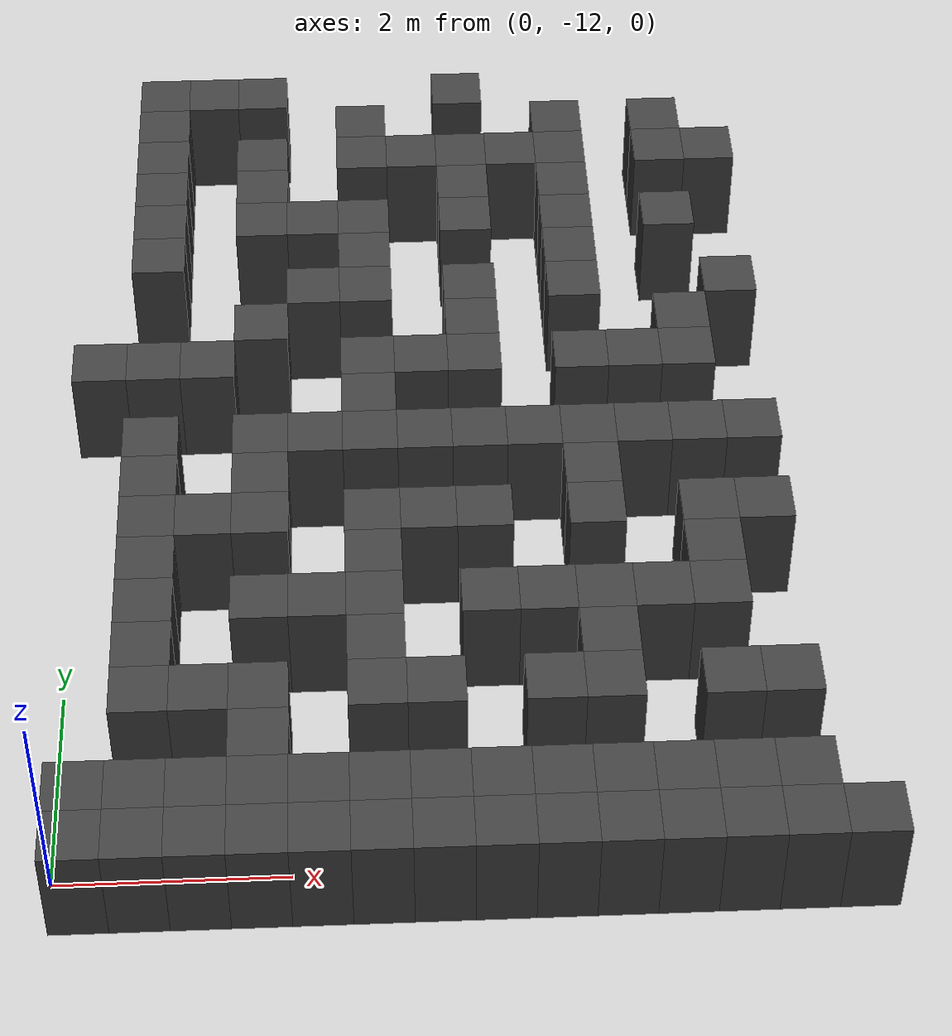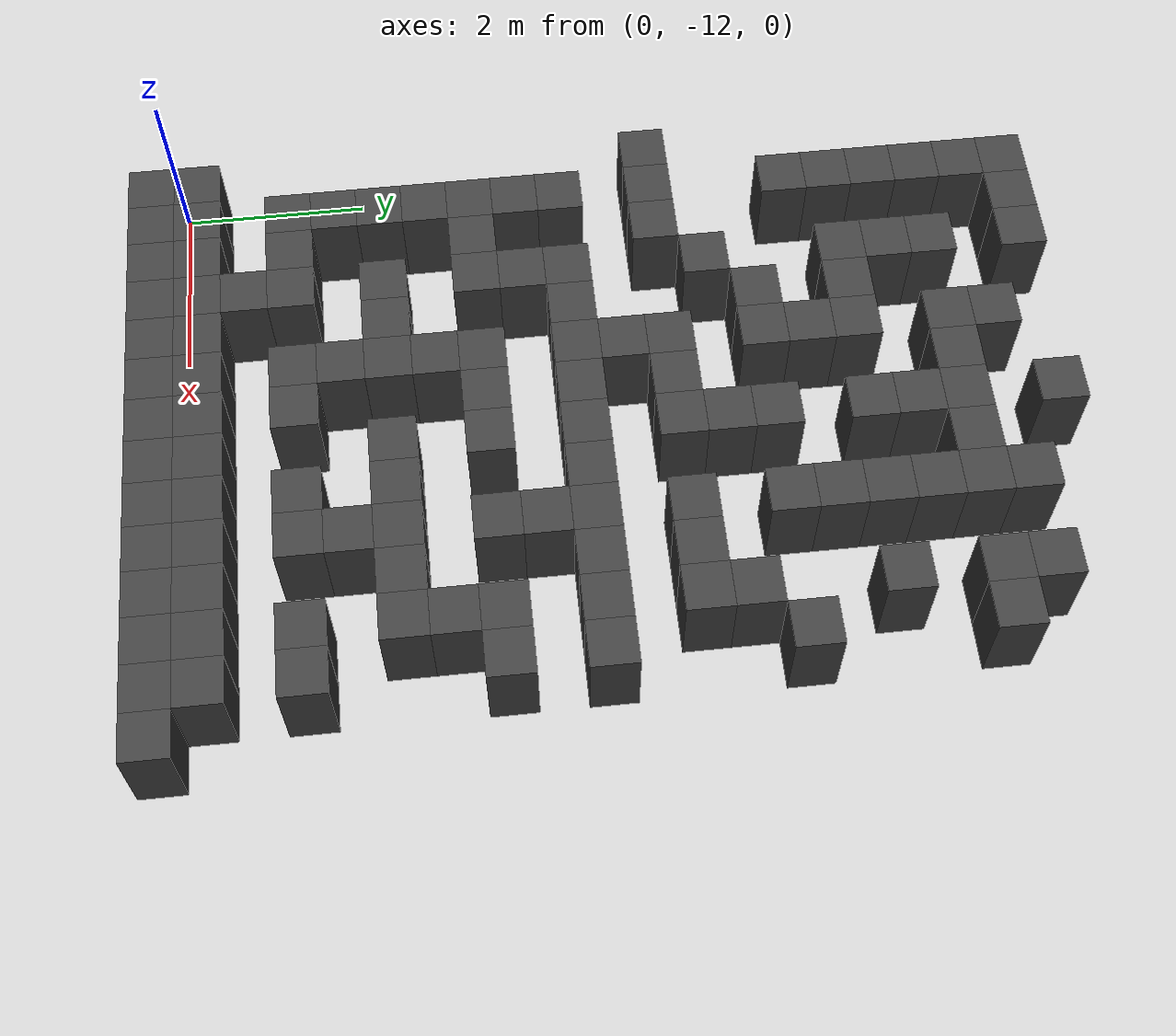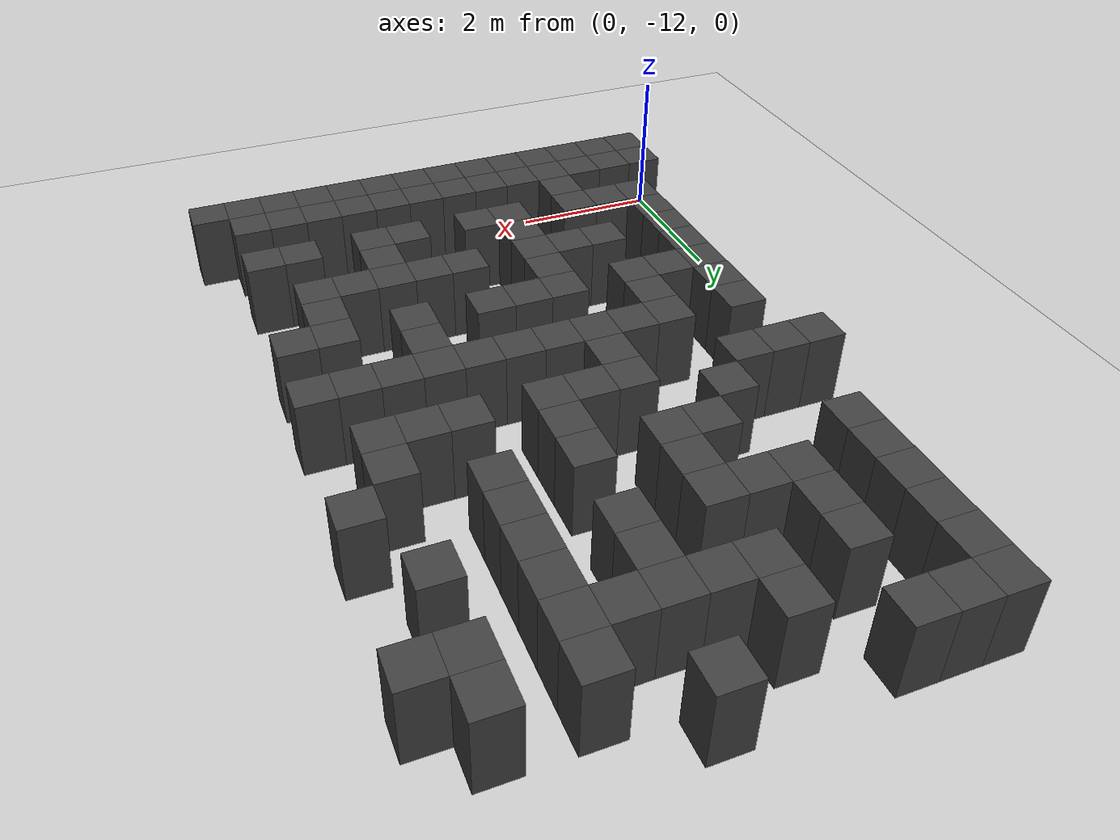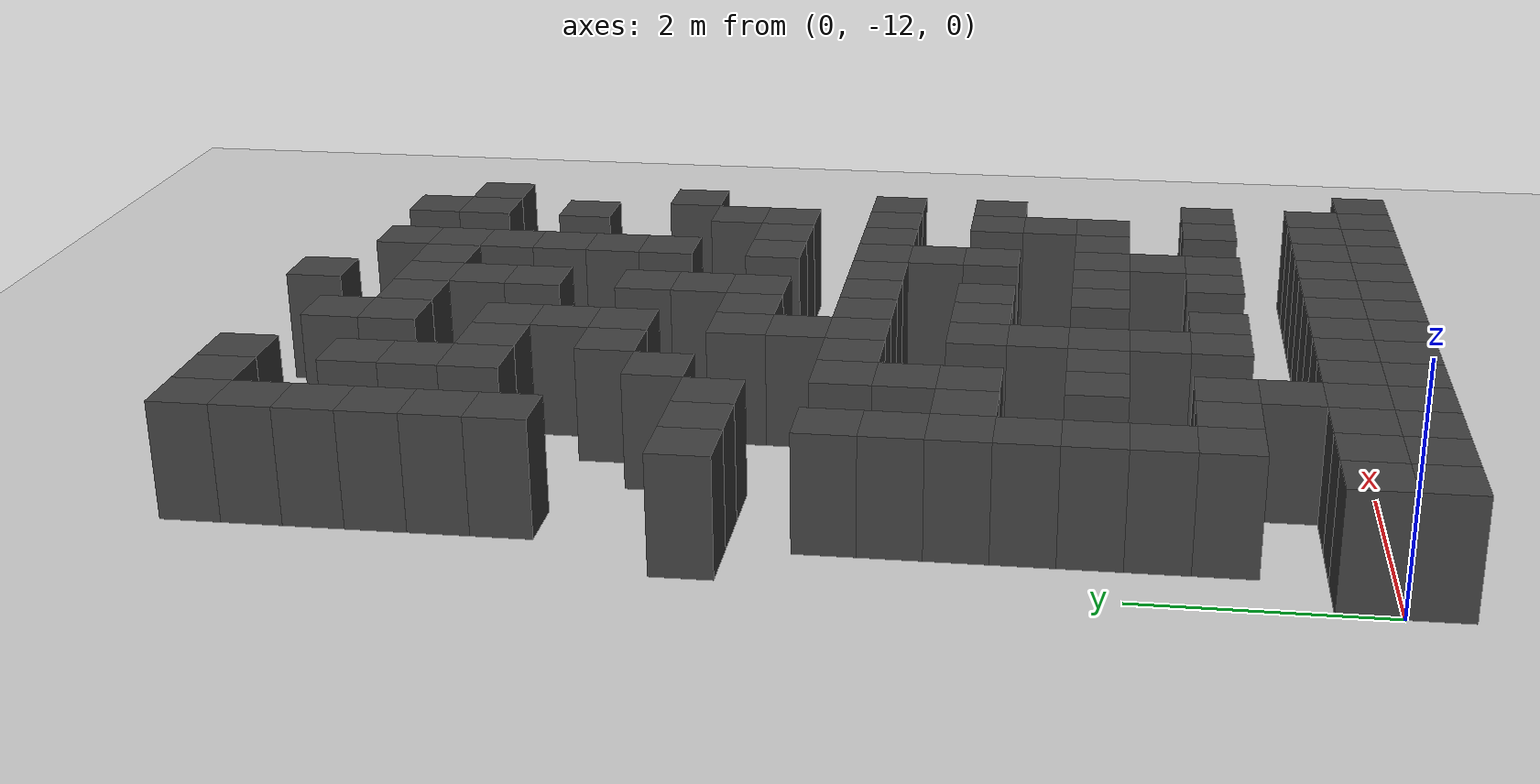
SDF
<sdf version="1.7">
 <world name="map_16588">
  <model name="ground_plane">
   <static>true</static>
   <link name="link">
    <collision name="collision">
     <geometry><plane><normal>0 0 1</normal><size>200 200</size></plane></geometry>
    </collision>
    <visual name="visual">
     <geometry><plane><normal>0 0 1</normal><size>200 200</size></plane></geometry>
     <material><ambient>0.8 0.8 0.8 1</ambient><diffuse>0.8 0.8 0.8 1</diffuse></material>
    </visual>
   </link>
  </model>
  <model name="maze_environment">
   <static>true</static>
   <link name="wall_741">
    <pose>0.750 -2.750 0.500 0 0 0</pose>
    <collision name="col"><geometry><box><size>0.5 0.5 1.0</size></box></geometry></collision>
    <visual name="vis">
     <geometry><box><size>0.5 0.5 1.0</size></box></geometry>
     <material><ambient>0.15 0.15 0.15 1</ambient><diffuse>0.25 0.25 0.25 1</diffuse></material>
    </visual>
   </link>
   <link name="wall_742">
    <pose>1.250 -2.750 0.500 0 0 0</pose>
    <collision name="col"><geometry><box><size>0.5 0.5 1.0</size></box></geometry></collision>
    <visual name="vis">
     <geometry><box><size>0.5 0.5 1.0</size></box></geometry>
     <material><ambient>0.15 0.15 0.15 1</ambient><diffuse>0.25 0.25 0.25 1</diffuse></material>
    </visual>
   </link>
   <link name="wall_743">
    <pose>1.750 -2.750 0.500 0 0 0</pose>
    <collision name="col"><geometry><box><size>0.5 0.5 1.0</size></box></geometry></collision>
    <visual name="vis">
     <geometry><box><size>0.5 0.5 1.0</size></box></geometry>
     <material><ambient>0.15 0.15 0.15 1</ambient><diffuse>0.25 0.25 0.25 1</diffuse></material>
    </visual>
   </link>
   <link name="wall_744">
    <pose>3.750 -2.750 0.500 0 0 0</pose>
    <collision name="col"><geometry><box><size>0.5 0.5 1.0</size></box></geometry></collision>
    <visual name="vis">
     <geometry><box><size>0.5 0.5 1.0</size></box></geometry>
     <material><ambient>0.15 0.15 0.15 1</ambient><diffuse>0.25 0.25 0.25 1</diffuse></material>
    </visual>
   </link>
   <link name="wall_764">
    <pose>0.750 -3.250 0.500 0 0 0</pose>
    <collision name="col"><geometry><box><size>0.5 0.5 1.0</size></box></geometry></collision>
    <visual name="vis">
     <geometry><box><size>0.5 0.5 1.0</size></box></geometry>
     <material><ambient>0.15 0.15 0.15 1</ambient><diffuse>0.25 0.25 0.25 1</diffuse></material>
    </visual>
   </link>
   <link name="wall_765">
    <pose>2.750 -3.250 0.500 0 0 0</pose>
    <collision name="col"><geometry><box><size>0.5 0.5 1.0</size></box></geometry></collision>
    <visual name="vis">
     <geometry><box><size>0.5 0.5 1.0</size></box></geometry>
     <material><ambient>0.15 0.15 0.15 1</ambient><diffuse>0.25 0.25 0.25 1</diffuse></material>
    </visual>
   </link>
   <link name="wall_766">
    <pose>4.750 -3.250 0.500 0 0 0</pose>
    <collision name="col"><geometry><box><size>0.5 0.5 1.0</size></box></geometry></collision>
    <visual name="vis">
     <geometry><box><size>0.5 0.5 1.0</size></box></geometry>
     <material><ambient>0.15 0.15 0.15 1</ambient><diffuse>0.25 0.25 0.25 1</diffuse></material>
    </visual>
   </link>
   <link name="wall_767">
    <pose>5.750 -3.250 0.500 0 0 0</pose>
    <collision name="col"><geometry><box><size>0.5 0.5 1.0</size></box></geometry></collision>
    <visual name="vis">
     <geometry><box><size>0.5 0.5 1.0</size></box></geometry>
     <material><ambient>0.15 0.15 0.15 1</ambient><diffuse>0.25 0.25 0.25 1</diffuse></material>
    </visual>
   </link>
   <link name="wall_787">
    <pose>0.750 -3.750 0.500 0 0 0</pose>
    <collision name="col"><geometry><box><size>0.5 0.5 1.0</size></box></geometry></collision>
    <visual name="vis">
     <geometry><box><size>0.5 0.5 1.0</size></box></geometry>
     <material><ambient>0.15 0.15 0.15 1</ambient><diffuse>0.25 0.25 0.25 1</diffuse></material>
    </visual>
   </link>
   <link name="wall_788">
    <pose>1.750 -3.750 0.500 0 0 0</pose>
    <collision name="col"><geometry><box><size>0.5 0.5 1.0</size></box></geometry></collision>
    <visual name="vis">
     <geometry><box><size>0.5 0.5 1.0</size></box></geometry>
     <material><ambient>0.15 0.15 0.15 1</ambient><diffuse>0.25 0.25 0.25 1</diffuse></material>
    </visual>
   </link>
   <link name="wall_789">
    <pose>2.750 -3.750 0.500 0 0 0</pose>
    <collision name="col"><geometry><box><size>0.5 0.5 1.0</size></box></geometry></collision>
    <visual name="vis">
     <geometry><box><size>0.5 0.5 1.0</size></box></geometry>
     <material><ambient>0.15 0.15 0.15 1</ambient><diffuse>0.25 0.25 0.25 1</diffuse></material>
    </visual>
   </link>
   <link name="wall_790">
    <pose>3.250 -3.750 0.500 0 0 0</pose>
    <collision name="col"><geometry><box><size>0.5 0.5 1.0</size></box></geometry></collision>
    <visual name="vis">
     <geometry><box><size>0.5 0.5 1.0</size></box></geometry>
     <material><ambient>0.15 0.15 0.15 1</ambient><diffuse>0.25 0.25 0.25 1</diffuse></material>
    </visual>
   </link>
   <link name="wall_791">
    <pose>3.750 -3.750 0.500 0 0 0</pose>
    <collision name="col"><geometry><box><size>0.5 0.5 1.0</size></box></geometry></collision>
    <visual name="vis">
     <geometry><box><size>0.5 0.5 1.0</size></box></geometry>
     <material><ambient>0.15 0.15 0.15 1</ambient><diffuse>0.25 0.25 0.25 1</diffuse></material>
    </visual>
   </link>
   <link name="wall_792">
    <pose>4.250 -3.750 0.500 0 0 0</pose>
    <collision name="col"><geometry><box><size>0.5 0.5 1.0</size></box></geometry></collision>
    <visual name="vis">
     <geometry><box><size>0.5 0.5 1.0</size></box></geometry>
     <material><ambient>0.15 0.15 0.15 1</ambient><diffuse>0.25 0.25 0.25 1</diffuse></material>
    </visual>
   </link>
   <link name="wall_793">
    <pose>4.750 -3.750 0.500 0 0 0</pose>
    <collision name="col"><geometry><box><size>0.5 0.5 1.0</size></box></geometry></collision>
    <visual name="vis">
     <geometry><box><size>0.5 0.5 1.0</size></box></geometry>
     <material><ambient>0.15 0.15 0.15 1</ambient><diffuse>0.25 0.25 0.25 1</diffuse></material>
    </visual>
   </link>
   <link name="wall_794">
    <pose>5.750 -3.750 0.500 0 0 0</pose>
    <collision name="col"><geometry><box><size>0.5 0.5 1.0</size></box></geometry></collision>
    <visual name="vis">
     <geometry><box><size>0.5 0.5 1.0</size></box></geometry>
     <material><ambient>0.15 0.15 0.15 1</ambient><diffuse>0.25 0.25 0.25 1</diffuse></material>
    </visual>
   </link>
   <link name="wall_795">
    <pose>6.250 -3.750 0.500 0 0 0</pose>
    <collision name="col"><geometry><box><size>0.5 0.5 1.0</size></box></geometry></collision>
    <visual name="vis">
     <geometry><box><size>0.5 0.5 1.0</size></box></geometry>
     <material><ambient>0.15 0.15 0.15 1</ambient><diffuse>0.25 0.25 0.25 1</diffuse></material>
    </visual>
   </link>
   <link name="wall_813">
    <pose>0.750 -4.250 0.500 0 0 0</pose>
    <collision name="col"><geometry><box><size>0.5 0.5 1.0</size></box></geometry></collision>
    <visual name="vis">
     <geometry><box><size>0.5 0.5 1.0</size></box></geometry>
     <material><ambient>0.15 0.15 0.15 1</ambient><diffuse>0.25 0.25 0.25 1</diffuse></material>
    </visual>
   </link>
   <link name="wall_814">
    <pose>1.750 -4.250 0.500 0 0 0</pose>
    <collision name="col"><geometry><box><size>0.5 0.5 1.0</size></box></geometry></collision>
    <visual name="vis">
     <geometry><box><size>0.5 0.5 1.0</size></box></geometry>
     <material><ambient>0.15 0.15 0.15 1</ambient><diffuse>0.25 0.25 0.25 1</diffuse></material>
    </visual>
   </link>
   <link name="wall_815">
    <pose>3.750 -4.250 0.500 0 0 0</pose>
    <collision name="col"><geometry><box><size>0.5 0.5 1.0</size></box></geometry></collision>
    <visual name="vis">
     <geometry><box><size>0.5 0.5 1.0</size></box></geometry>
     <material><ambient>0.15 0.15 0.15 1</ambient><diffuse>0.25 0.25 0.25 1</diffuse></material>
    </visual>
   </link>
   <link name="wall_816">
    <pose>4.750 -4.250 0.500 0 0 0</pose>
    <collision name="col"><geometry><box><size>0.5 0.5 1.0</size></box></geometry></collision>
    <visual name="vis">
     <geometry><box><size>0.5 0.5 1.0</size></box></geometry>
     <material><ambient>0.15 0.15 0.15 1</ambient><diffuse>0.25 0.25 0.25 1</diffuse></material>
    </visual>
   </link>
   <link name="wall_838">
    <pose>0.750 -4.750 0.500 0 0 0</pose>
    <collision name="col"><geometry><box><size>0.5 0.5 1.0</size></box></geometry></collision>
    <visual name="vis">
     <geometry><box><size>0.5 0.5 1.0</size></box></geometry>
     <material><ambient>0.15 0.15 0.15 1</ambient><diffuse>0.25 0.25 0.25 1</diffuse></material>
    </visual>
   </link>
   <link name="wall_839">
    <pose>1.750 -4.750 0.500 0 0 0</pose>
    <collision name="col"><geometry><box><size>0.5 0.5 1.0</size></box></geometry></collision>
    <visual name="vis">
     <geometry><box><size>0.5 0.5 1.0</size></box></geometry>
     <material><ambient>0.15 0.15 0.15 1</ambient><diffuse>0.25 0.25 0.25 1</diffuse></material>
    </visual>
   </link>
   <link name="wall_840">
    <pose>2.250 -4.750 0.500 0 0 0</pose>
    <collision name="col"><geometry><box><size>0.5 0.5 1.0</size></box></geometry></collision>
    <visual name="vis">
     <geometry><box><size>0.5 0.5 1.0</size></box></geometry>
     <material><ambient>0.15 0.15 0.15 1</ambient><diffuse>0.25 0.25 0.25 1</diffuse></material>
    </visual>
   </link>
   <link name="wall_841">
    <pose>2.750 -4.750 0.500 0 0 0</pose>
    <collision name="col"><geometry><box><size>0.5 0.5 1.0</size></box></geometry></collision>
    <visual name="vis">
     <geometry><box><size>0.5 0.5 1.0</size></box></geometry>
     <material><ambient>0.15 0.15 0.15 1</ambient><diffuse>0.25 0.25 0.25 1</diffuse></material>
    </visual>
   </link>
   <link name="wall_842">
    <pose>3.750 -4.750 0.500 0 0 0</pose>
    <collision name="col"><geometry><box><size>0.5 0.5 1.0</size></box></geometry></collision>
    <visual name="vis">
     <geometry><box><size>0.5 0.5 1.0</size></box></geometry>
     <material><ambient>0.15 0.15 0.15 1</ambient><diffuse>0.25 0.25 0.25 1</diffuse></material>
    </visual>
   </link>
   <link name="wall_843">
    <pose>4.750 -4.750 0.500 0 0 0</pose>
    <collision name="col"><geometry><box><size>0.5 0.5 1.0</size></box></geometry></collision>
    <visual name="vis">
     <geometry><box><size>0.5 0.5 1.0</size></box></geometry>
     <material><ambient>0.15 0.15 0.15 1</ambient><diffuse>0.25 0.25 0.25 1</diffuse></material>
    </visual>
   </link>
   <link name="wall_844">
    <pose>5.750 -4.750 0.500 0 0 0</pose>
    <collision name="col"><geometry><box><size>0.5 0.5 1.0</size></box></geometry></collision>
    <visual name="vis">
     <geometry><box><size>0.5 0.5 1.0</size></box></geometry>
     <material><ambient>0.15 0.15 0.15 1</ambient><diffuse>0.25 0.25 0.25 1</diffuse></material>
    </visual>
   </link>
   <link name="wall_859">
    <pose>0.750 -5.250 0.500 0 0 0</pose>
    <collision name="col"><geometry><box><size>0.5 0.5 1.0</size></box></geometry></collision>
    <visual name="vis">
     <geometry><box><size>0.5 0.5 1.0</size></box></geometry>
     <material><ambient>0.15 0.15 0.15 1</ambient><diffuse>0.25 0.25 0.25 1</diffuse></material>
    </visual>
   </link>
   <link name="wall_860">
    <pose>2.750 -5.250 0.500 0 0 0</pose>
    <collision name="col"><geometry><box><size>0.5 0.5 1.0</size></box></geometry></collision>
    <visual name="vis">
     <geometry><box><size>0.5 0.5 1.0</size></box></geometry>
     <material><ambient>0.15 0.15 0.15 1</ambient><diffuse>0.25 0.25 0.25 1</diffuse></material>
    </visual>
   </link>
   <link name="wall_861">
    <pose>4.750 -5.250 0.500 0 0 0</pose>
    <collision name="col"><geometry><box><size>0.5 0.5 1.0</size></box></geometry></collision>
    <visual name="vis">
     <geometry><box><size>0.5 0.5 1.0</size></box></geometry>
     <material><ambient>0.15 0.15 0.15 1</ambient><diffuse>0.25 0.25 0.25 1</diffuse></material>
    </visual>
   </link>
   <link name="wall_885">
    <pose>2.250 -5.750 0.500 0 0 0</pose>
    <collision name="col"><geometry><box><size>0.5 0.5 1.0</size></box></geometry></collision>
    <visual name="vis">
     <geometry><box><size>0.5 0.5 1.0</size></box></geometry>
     <material><ambient>0.15 0.15 0.15 1</ambient><diffuse>0.25 0.25 0.25 1</diffuse></material>
    </visual>
   </link>
   <link name="wall_886">
    <pose>2.750 -5.750 0.500 0 0 0</pose>
    <collision name="col"><geometry><box><size>0.5 0.5 1.0</size></box></geometry></collision>
    <visual name="vis">
     <geometry><box><size>0.5 0.5 1.0</size></box></geometry>
     <material><ambient>0.15 0.15 0.15 1</ambient><diffuse>0.25 0.25 0.25 1</diffuse></material>
    </visual>
   </link>
   <link name="wall_887">
    <pose>3.750 -5.750 0.500 0 0 0</pose>
    <collision name="col"><geometry><box><size>0.5 0.5 1.0</size></box></geometry></collision>
    <visual name="vis">
     <geometry><box><size>0.5 0.5 1.0</size></box></geometry>
     <material><ambient>0.15 0.15 0.15 1</ambient><diffuse>0.25 0.25 0.25 1</diffuse></material>
    </visual>
   </link>
   <link name="wall_888">
    <pose>4.750 -5.750 0.500 0 0 0</pose>
    <collision name="col"><geometry><box><size>0.5 0.5 1.0</size></box></geometry></collision>
    <visual name="vis">
     <geometry><box><size>0.5 0.5 1.0</size></box></geometry>
     <material><ambient>0.15 0.15 0.15 1</ambient><diffuse>0.25 0.25 0.25 1</diffuse></material>
    </visual>
   </link>
   <link name="wall_889">
    <pose>6.250 -5.750 0.500 0 0 0</pose>
    <collision name="col"><geometry><box><size>0.5 0.5 1.0</size></box></geometry></collision>
    <visual name="vis">
     <geometry><box><size>0.5 0.5 1.0</size></box></geometry>
     <material><ambient>0.15 0.15 0.15 1</ambient><diffuse>0.25 0.25 0.25 1</diffuse></material>
    </visual>
   </link>
   <link name="wall_904">
    <pose>1.750 -6.250 0.500 0 0 0</pose>
    <collision name="col"><geometry><box><size>0.5 0.5 1.0</size></box></geometry></collision>
    <visual name="vis">
     <geometry><box><size>0.5 0.5 1.0</size></box></geometry>
     <material><ambient>0.15 0.15 0.15 1</ambient><diffuse>0.25 0.25 0.25 1</diffuse></material>
    </visual>
   </link>
   <link name="wall_905">
    <pose>3.750 -6.250 0.500 0 0 0</pose>
    <collision name="col"><geometry><box><size>0.5 0.5 1.0</size></box></geometry></collision>
    <visual name="vis">
     <geometry><box><size>0.5 0.5 1.0</size></box></geometry>
     <material><ambient>0.15 0.15 0.15 1</ambient><diffuse>0.25 0.25 0.25 1</diffuse></material>
    </visual>
   </link>
   <link name="wall_906">
    <pose>5.750 -6.250 0.500 0 0 0</pose>
    <collision name="col"><geometry><box><size>0.5 0.5 1.0</size></box></geometry></collision>
    <visual name="vis">
     <geometry><box><size>0.5 0.5 1.0</size></box></geometry>
     <material><ambient>0.15 0.15 0.15 1</ambient><diffuse>0.25 0.25 0.25 1</diffuse></material>
    </visual>
   </link>
   <link name="wall_927">
    <pose>0.250 -6.750 0.500 0 0 0</pose>
    <collision name="col"><geometry><box><size>0.5 0.5 1.0</size></box></geometry></collision>
    <visual name="vis">
     <geometry><box><size>0.5 0.5 1.0</size></box></geometry>
     <material><ambient>0.15 0.15 0.15 1</ambient><diffuse>0.25 0.25 0.25 1</diffuse></material>
    </visual>
   </link>
   <link name="wall_928">
    <pose>0.750 -6.750 0.500 0 0 0</pose>
    <collision name="col"><geometry><box><size>0.5 0.5 1.0</size></box></geometry></collision>
    <visual name="vis">
     <geometry><box><size>0.5 0.5 1.0</size></box></geometry>
     <material><ambient>0.15 0.15 0.15 1</ambient><diffuse>0.25 0.25 0.25 1</diffuse></material>
    </visual>
   </link>
   <link name="wall_929">
    <pose>1.250 -6.750 0.500 0 0 0</pose>
    <collision name="col"><geometry><box><size>0.5 0.5 1.0</size></box></geometry></collision>
    <visual name="vis">
     <geometry><box><size>0.5 0.5 1.0</size></box></geometry>
     <material><ambient>0.15 0.15 0.15 1</ambient><diffuse>0.25 0.25 0.25 1</diffuse></material>
    </visual>
   </link>
   <link name="wall_930">
    <pose>2.750 -6.750 0.500 0 0 0</pose>
    <collision name="col"><geometry><box><size>0.5 0.5 1.0</size></box></geometry></collision>
    <visual name="vis">
     <geometry><box><size>0.5 0.5 1.0</size></box></geometry>
     <material><ambient>0.15 0.15 0.15 1</ambient><diffuse>0.25 0.25 0.25 1</diffuse></material>
    </visual>
   </link>
   <link name="wall_931">
    <pose>3.250 -6.750 0.500 0 0 0</pose>
    <collision name="col"><geometry><box><size>0.5 0.5 1.0</size></box></geometry></collision>
    <visual name="vis">
     <geometry><box><size>0.5 0.5 1.0</size></box></geometry>
     <material><ambient>0.15 0.15 0.15 1</ambient><diffuse>0.25 0.25 0.25 1</diffuse></material>
    </visual>
   </link>
   <link name="wall_932">
    <pose>3.750 -6.750 0.500 0 0 0</pose>
    <collision name="col"><geometry><box><size>0.5 0.5 1.0</size></box></geometry></collision>
    <visual name="vis">
     <geometry><box><size>0.5 0.5 1.0</size></box></geometry>
     <material><ambient>0.15 0.15 0.15 1</ambient><diffuse>0.25 0.25 0.25 1</diffuse></material>
    </visual>
   </link>
   <link name="wall_933">
    <pose>4.750 -6.750 0.500 0 0 0</pose>
    <collision name="col"><geometry><box><size>0.5 0.5 1.0</size></box></geometry></collision>
    <visual name="vis">
     <geometry><box><size>0.5 0.5 1.0</size></box></geometry>
     <material><ambient>0.15 0.15 0.15 1</ambient><diffuse>0.25 0.25 0.25 1</diffuse></material>
    </visual>
   </link>
   <link name="wall_934">
    <pose>5.250 -6.750 0.500 0 0 0</pose>
    <collision name="col"><geometry><box><size>0.5 0.5 1.0</size></box></geometry></collision>
    <visual name="vis">
     <geometry><box><size>0.5 0.5 1.0</size></box></geometry>
     <material><ambient>0.15 0.15 0.15 1</ambient><diffuse>0.25 0.25 0.25 1</diffuse></material>
    </visual>
   </link>
   <link name="wall_935">
    <pose>5.750 -6.750 0.500 0 0 0</pose>
    <collision name="col"><geometry><box><size>0.5 0.5 1.0</size></box></geometry></collision>
    <visual name="vis">
     <geometry><box><size>0.5 0.5 1.0</size></box></geometry>
     <material><ambient>0.15 0.15 0.15 1</ambient><diffuse>0.25 0.25 0.25 1</diffuse></material>
    </visual>
   </link>
   <link name="wall_951">
    <pose>2.750 -7.250 0.500 0 0 0</pose>
    <collision name="col"><geometry><box><size>0.5 0.5 1.0</size></box></geometry></collision>
    <visual name="vis">
     <geometry><box><size>0.5 0.5 1.0</size></box></geometry>
     <material><ambient>0.15 0.15 0.15 1</ambient><diffuse>0.25 0.25 0.25 1</diffuse></material>
    </visual>
   </link>
   <link name="wall_976">
    <pose>0.750 -7.750 0.500 0 0 0</pose>
    <collision name="col"><geometry><box><size>0.5 0.5 1.0</size></box></geometry></collision>
    <visual name="vis">
     <geometry><box><size>0.5 0.5 1.0</size></box></geometry>
     <material><ambient>0.15 0.15 0.15 1</ambient><diffuse>0.25 0.25 0.25 1</diffuse></material>
    </visual>
   </link>
   <link name="wall_977">
    <pose>1.750 -7.750 0.500 0 0 0</pose>
    <collision name="col"><geometry><box><size>0.5 0.5 1.0</size></box></geometry></collision>
    <visual name="vis">
     <geometry><box><size>0.5 0.5 1.0</size></box></geometry>
     <material><ambient>0.15 0.15 0.15 1</ambient><diffuse>0.25 0.25 0.25 1</diffuse></material>
    </visual>
   </link>
   <link name="wall_978">
    <pose>2.250 -7.750 0.500 0 0 0</pose>
    <collision name="col"><geometry><box><size>0.5 0.5 1.0</size></box></geometry></collision>
    <visual name="vis">
     <geometry><box><size>0.5 0.5 1.0</size></box></geometry>
     <material><ambient>0.15 0.15 0.15 1</ambient><diffuse>0.25 0.25 0.25 1</diffuse></material>
    </visual>
   </link>
   <link name="wall_979">
    <pose>2.750 -7.750 0.500 0 0 0</pose>
    <collision name="col"><geometry><box><size>0.5 0.5 1.0</size></box></geometry></collision>
    <visual name="vis">
     <geometry><box><size>0.5 0.5 1.0</size></box></geometry>
     <material><ambient>0.15 0.15 0.15 1</ambient><diffuse>0.25 0.25 0.25 1</diffuse></material>
    </visual>
   </link>
   <link name="wall_980">
    <pose>3.250 -7.750 0.500 0 0 0</pose>
    <collision name="col"><geometry><box><size>0.5 0.5 1.0</size></box></geometry></collision>
    <visual name="vis">
     <geometry><box><size>0.5 0.5 1.0</size></box></geometry>
     <material><ambient>0.15 0.15 0.15 1</ambient><diffuse>0.25 0.25 0.25 1</diffuse></material>
    </visual>
   </link>
   <link name="wall_981">
    <pose>3.750 -7.750 0.500 0 0 0</pose>
    <collision name="col"><geometry><box><size>0.5 0.5 1.0</size></box></geometry></collision>
    <visual name="vis">
     <geometry><box><size>0.5 0.5 1.0</size></box></geometry>
     <material><ambient>0.15 0.15 0.15 1</ambient><diffuse>0.25 0.25 0.25 1</diffuse></material>
    </visual>
   </link>
   <link name="wall_982">
    <pose>4.250 -7.750 0.500 0 0 0</pose>
    <collision name="col"><geometry><box><size>0.5 0.5 1.0</size></box></geometry></collision>
    <visual name="vis">
     <geometry><box><size>0.5 0.5 1.0</size></box></geometry>
     <material><ambient>0.15 0.15 0.15 1</ambient><diffuse>0.25 0.25 0.25 1</diffuse></material>
    </visual>
   </link>
   <link name="wall_983">
    <pose>4.750 -7.750 0.500 0 0 0</pose>
    <collision name="col"><geometry><box><size>0.5 0.5 1.0</size></box></geometry></collision>
    <visual name="vis">
     <geometry><box><size>0.5 0.5 1.0</size></box></geometry>
     <material><ambient>0.15 0.15 0.15 1</ambient><diffuse>0.25 0.25 0.25 1</diffuse></material>
    </visual>
   </link>
   <link name="wall_984">
    <pose>5.250 -7.750 0.500 0 0 0</pose>
    <collision name="col"><geometry><box><size>0.5 0.5 1.0</size></box></geometry></collision>
    <visual name="vis">
     <geometry><box><size>0.5 0.5 1.0</size></box></geometry>
     <material><ambient>0.15 0.15 0.15 1</ambient><diffuse>0.25 0.25 0.25 1</diffuse></material>
    </visual>
   </link>
   <link name="wall_985">
    <pose>5.750 -7.750 0.500 0 0 0</pose>
    <collision name="col"><geometry><box><size>0.5 0.5 1.0</size></box></geometry></collision>
    <visual name="vis">
     <geometry><box><size>0.5 0.5 1.0</size></box></geometry>
     <material><ambient>0.15 0.15 0.15 1</ambient><diffuse>0.25 0.25 0.25 1</diffuse></material>
    </visual>
   </link>
   <link name="wall_986">
    <pose>6.250 -7.750 0.500 0 0 0</pose>
    <collision name="col"><geometry><box><size>0.5 0.5 1.0</size></box></geometry></collision>
    <visual name="vis">
     <geometry><box><size>0.5 0.5 1.0</size></box></geometry>
     <material><ambient>0.15 0.15 0.15 1</ambient><diffuse>0.25 0.25 0.25 1</diffuse></material>
    </visual>
   </link>
   <link name="wall_1002">
    <pose>0.750 -8.250 0.500 0 0 0</pose>
    <collision name="col"><geometry><box><size>0.5 0.5 1.0</size></box></geometry></collision>
    <visual name="vis">
     <geometry><box><size>0.5 0.5 1.0</size></box></geometry>
     <material><ambient>0.15 0.15 0.15 1</ambient><diffuse>0.25 0.25 0.25 1</diffuse></material>
    </visual>
   </link>
   <link name="wall_1003">
    <pose>1.750 -8.250 0.500 0 0 0</pose>
    <collision name="col"><geometry><box><size>0.5 0.5 1.0</size></box></geometry></collision>
    <visual name="vis">
     <geometry><box><size>0.5 0.5 1.0</size></box></geometry>
     <material><ambient>0.15 0.15 0.15 1</ambient><diffuse>0.25 0.25 0.25 1</diffuse></material>
    </visual>
   </link>
   <link name="wall_1004">
    <pose>4.750 -8.250 0.500 0 0 0</pose>
    <collision name="col"><geometry><box><size>0.5 0.5 1.0</size></box></geometry></collision>
    <visual name="vis">
     <geometry><box><size>0.5 0.5 1.0</size></box></geometry>
     <material><ambient>0.15 0.15 0.15 1</ambient><diffuse>0.25 0.25 0.25 1</diffuse></material>
    </visual>
   </link>
   <link name="wall_1024">
    <pose>0.750 -8.750 0.500 0 0 0</pose>
    <collision name="col"><geometry><box><size>0.5 0.5 1.0</size></box></geometry></collision>
    <visual name="vis">
     <geometry><box><size>0.5 0.5 1.0</size></box></geometry>
     <material><ambient>0.15 0.15 0.15 1</ambient><diffuse>0.25 0.25 0.25 1</diffuse></material>
    </visual>
   </link>
   <link name="wall_1025">
    <pose>1.250 -8.750 0.500 0 0 0</pose>
    <collision name="col"><geometry><box><size>0.5 0.5 1.0</size></box></geometry></collision>
    <visual name="vis">
     <geometry><box><size>0.5 0.5 1.0</size></box></geometry>
     <material><ambient>0.15 0.15 0.15 1</ambient><diffuse>0.25 0.25 0.25 1</diffuse></material>
    </visual>
   </link>
   <link name="wall_1026">
    <pose>1.750 -8.750 0.500 0 0 0</pose>
    <collision name="col"><geometry><box><size>0.5 0.5 1.0</size></box></geometry></collision>
    <visual name="vis">
     <geometry><box><size>0.5 0.5 1.0</size></box></geometry>
     <material><ambient>0.15 0.15 0.15 1</ambient><diffuse>0.25 0.25 0.25 1</diffuse></material>
    </visual>
   </link>
   <link name="wall_1027">
    <pose>2.750 -8.750 0.500 0 0 0</pose>
    <collision name="col"><geometry><box><size>0.5 0.5 1.0</size></box></geometry></collision>
    <visual name="vis">
     <geometry><box><size>0.5 0.5 1.0</size></box></geometry>
     <material><ambient>0.15 0.15 0.15 1</ambient><diffuse>0.25 0.25 0.25 1</diffuse></material>
    </visual>
   </link>
   <link name="wall_1028">
    <pose>3.250 -8.750 0.500 0 0 0</pose>
    <collision name="col"><geometry><box><size>0.5 0.5 1.0</size></box></geometry></collision>
    <visual name="vis">
     <geometry><box><size>0.5 0.5 1.0</size></box></geometry>
     <material><ambient>0.15 0.15 0.15 1</ambient><diffuse>0.25 0.25 0.25 1</diffuse></material>
    </visual>
   </link>
   <link name="wall_1029">
    <pose>3.750 -8.750 0.500 0 0 0</pose>
    <collision name="col"><geometry><box><size>0.5 0.5 1.0</size></box></geometry></collision>
    <visual name="vis">
     <geometry><box><size>0.5 0.5 1.0</size></box></geometry>
     <material><ambient>0.15 0.15 0.15 1</ambient><diffuse>0.25 0.25 0.25 1</diffuse></material>
    </visual>
   </link>
   <link name="wall_1030">
    <pose>4.750 -8.750 0.500 0 0 0</pose>
    <collision name="col"><geometry><box><size>0.5 0.5 1.0</size></box></geometry></collision>
    <visual name="vis">
     <geometry><box><size>0.5 0.5 1.0</size></box></geometry>
     <material><ambient>0.15 0.15 0.15 1</ambient><diffuse>0.25 0.25 0.25 1</diffuse></material>
    </visual>
   </link>
   <link name="wall_1031">
    <pose>5.750 -8.750 0.500 0 0 0</pose>
    <collision name="col"><geometry><box><size>0.5 0.5 1.0</size></box></geometry></collision>
    <visual name="vis">
     <geometry><box><size>0.5 0.5 1.0</size></box></geometry>
     <material><ambient>0.15 0.15 0.15 1</ambient><diffuse>0.25 0.25 0.25 1</diffuse></material>
    </visual>
   </link>
   <link name="wall_1032">
    <pose>6.250 -8.750 0.500 0 0 0</pose>
    <collision name="col"><geometry><box><size>0.5 0.5 1.0</size></box></geometry></collision>
    <visual name="vis">
     <geometry><box><size>0.5 0.5 1.0</size></box></geometry>
     <material><ambient>0.15 0.15 0.15 1</ambient><diffuse>0.25 0.25 0.25 1</diffuse></material>
    </visual>
   </link>
   <link name="wall_1052">
    <pose>0.750 -9.250 0.500 0 0 0</pose>
    <collision name="col"><geometry><box><size>0.5 0.5 1.0</size></box></geometry></collision>
    <visual name="vis">
     <geometry><box><size>0.5 0.5 1.0</size></box></geometry>
     <material><ambient>0.15 0.15 0.15 1</ambient><diffuse>0.25 0.25 0.25 1</diffuse></material>
    </visual>
   </link>
   <link name="wall_1053">
    <pose>2.750 -9.250 0.500 0 0 0</pose>
    <collision name="col"><geometry><box><size>0.5 0.5 1.0</size></box></geometry></collision>
    <visual name="vis">
     <geometry><box><size>0.5 0.5 1.0</size></box></geometry>
     <material><ambient>0.15 0.15 0.15 1</ambient><diffuse>0.25 0.25 0.25 1</diffuse></material>
    </visual>
   </link>
   <link name="wall_1054">
    <pose>5.750 -9.250 0.500 0 0 0</pose>
    <collision name="col"><geometry><box><size>0.5 0.5 1.0</size></box></geometry></collision>
    <visual name="vis">
     <geometry><box><size>0.5 0.5 1.0</size></box></geometry>
     <material><ambient>0.15 0.15 0.15 1</ambient><diffuse>0.25 0.25 0.25 1</diffuse></material>
    </visual>
   </link>
   <link name="wall_1075">
    <pose>0.750 -9.750 0.500 0 0 0</pose>
    <collision name="col"><geometry><box><size>0.5 0.5 1.0</size></box></geometry></collision>
    <visual name="vis">
     <geometry><box><size>0.5 0.5 1.0</size></box></geometry>
     <material><ambient>0.15 0.15 0.15 1</ambient><diffuse>0.25 0.25 0.25 1</diffuse></material>
    </visual>
   </link>
   <link name="wall_1076">
    <pose>1.750 -9.750 0.500 0 0 0</pose>
    <collision name="col"><geometry><box><size>0.5 0.5 1.0</size></box></geometry></collision>
    <visual name="vis">
     <geometry><box><size>0.5 0.5 1.0</size></box></geometry>
     <material><ambient>0.15 0.15 0.15 1</ambient><diffuse>0.25 0.25 0.25 1</diffuse></material>
    </visual>
   </link>
   <link name="wall_1077">
    <pose>2.250 -9.750 0.500 0 0 0</pose>
    <collision name="col"><geometry><box><size>0.5 0.5 1.0</size></box></geometry></collision>
    <visual name="vis">
     <geometry><box><size>0.5 0.5 1.0</size></box></geometry>
     <material><ambient>0.15 0.15 0.15 1</ambient><diffuse>0.25 0.25 0.25 1</diffuse></material>
    </visual>
   </link>
   <link name="wall_1078">
    <pose>2.750 -9.750 0.500 0 0 0</pose>
    <collision name="col"><geometry><box><size>0.5 0.5 1.0</size></box></geometry></collision>
    <visual name="vis">
     <geometry><box><size>0.5 0.5 1.0</size></box></geometry>
     <material><ambient>0.15 0.15 0.15 1</ambient><diffuse>0.25 0.25 0.25 1</diffuse></material>
    </visual>
   </link>
   <link name="wall_1079">
    <pose>3.750 -9.750 0.500 0 0 0</pose>
    <collision name="col"><geometry><box><size>0.5 0.5 1.0</size></box></geometry></collision>
    <visual name="vis">
     <geometry><box><size>0.5 0.5 1.0</size></box></geometry>
     <material><ambient>0.15 0.15 0.15 1</ambient><diffuse>0.25 0.25 0.25 1</diffuse></material>
    </visual>
   </link>
   <link name="wall_1080">
    <pose>4.250 -9.750 0.500 0 0 0</pose>
    <collision name="col"><geometry><box><size>0.5 0.5 1.0</size></box></geometry></collision>
    <visual name="vis">
     <geometry><box><size>0.5 0.5 1.0</size></box></geometry>
     <material><ambient>0.15 0.15 0.15 1</ambient><diffuse>0.25 0.25 0.25 1</diffuse></material>
    </visual>
   </link>
   <link name="wall_1081">
    <pose>4.750 -9.750 0.500 0 0 0</pose>
    <collision name="col"><geometry><box><size>0.5 0.5 1.0</size></box></geometry></collision>
    <visual name="vis">
     <geometry><box><size>0.5 0.5 1.0</size></box></geometry>
     <material><ambient>0.15 0.15 0.15 1</ambient><diffuse>0.25 0.25 0.25 1</diffuse></material>
    </visual>
   </link>
   <link name="wall_1082">
    <pose>5.250 -9.750 0.500 0 0 0</pose>
    <collision name="col"><geometry><box><size>0.5 0.5 1.0</size></box></geometry></collision>
    <visual name="vis">
     <geometry><box><size>0.5 0.5 1.0</size></box></geometry>
     <material><ambient>0.15 0.15 0.15 1</ambient><diffuse>0.25 0.25 0.25 1</diffuse></material>
    </visual>
   </link>
   <link name="wall_1083">
    <pose>5.750 -9.750 0.500 0 0 0</pose>
    <collision name="col"><geometry><box><size>0.5 0.5 1.0</size></box></geometry></collision>
    <visual name="vis">
     <geometry><box><size>0.5 0.5 1.0</size></box></geometry>
     <material><ambient>0.15 0.15 0.15 1</ambient><diffuse>0.25 0.25 0.25 1</diffuse></material>
    </visual>
   </link>
   <link name="wall_1098">
    <pose>0.750 -10.250 0.500 0 0 0</pose>
    <collision name="col"><geometry><box><size>0.5 0.5 1.0</size></box></geometry></collision>
    <visual name="vis">
     <geometry><box><size>0.5 0.5 1.0</size></box></geometry>
     <material><ambient>0.15 0.15 0.15 1</ambient><diffuse>0.25 0.25 0.25 1</diffuse></material>
    </visual>
   </link>
   <link name="wall_1099">
    <pose>2.750 -10.250 0.500 0 0 0</pose>
    <collision name="col"><geometry><box><size>0.5 0.5 1.0</size></box></geometry></collision>
    <visual name="vis">
     <geometry><box><size>0.5 0.5 1.0</size></box></geometry>
     <material><ambient>0.15 0.15 0.15 1</ambient><diffuse>0.25 0.25 0.25 1</diffuse></material>
    </visual>
   </link>
   <link name="wall_1100">
    <pose>4.750 -10.250 0.500 0 0 0</pose>
    <collision name="col"><geometry><box><size>0.5 0.5 1.0</size></box></geometry></collision>
    <visual name="vis">
     <geometry><box><size>0.5 0.5 1.0</size></box></geometry>
     <material><ambient>0.15 0.15 0.15 1</ambient><diffuse>0.25 0.25 0.25 1</diffuse></material>
    </visual>
   </link>
   <link name="wall_1124">
    <pose>0.750 -10.750 0.500 0 0 0</pose>
    <collision name="col"><geometry><box><size>0.5 0.5 1.0</size></box></geometry></collision>
    <visual name="vis">
     <geometry><box><size>0.5 0.5 1.0</size></box></geometry>
     <material><ambient>0.15 0.15 0.15 1</ambient><diffuse>0.25 0.25 0.25 1</diffuse></material>
    </visual>
   </link>
   <link name="wall_1125">
    <pose>1.250 -10.750 0.500 0 0 0</pose>
    <collision name="col"><geometry><box><size>0.5 0.5 1.0</size></box></geometry></collision>
    <visual name="vis">
     <geometry><box><size>0.5 0.5 1.0</size></box></geometry>
     <material><ambient>0.15 0.15 0.15 1</ambient><diffuse>0.25 0.25 0.25 1</diffuse></material>
    </visual>
   </link>
   <link name="wall_1126">
    <pose>1.750 -10.750 0.500 0 0 0</pose>
    <collision name="col"><geometry><box><size>0.5 0.5 1.0</size></box></geometry></collision>
    <visual name="vis">
     <geometry><box><size>0.5 0.5 1.0</size></box></geometry>
     <material><ambient>0.15 0.15 0.15 1</ambient><diffuse>0.25 0.25 0.25 1</diffuse></material>
    </visual>
   </link>
   <link name="wall_1127">
    <pose>2.750 -10.750 0.500 0 0 0</pose>
    <collision name="col"><geometry><box><size>0.5 0.5 1.0</size></box></geometry></collision>
    <visual name="vis">
     <geometry><box><size>0.5 0.5 1.0</size></box></geometry>
     <material><ambient>0.15 0.15 0.15 1</ambient><diffuse>0.25 0.25 0.25 1</diffuse></material>
    </visual>
   </link>
   <link name="wall_1128">
    <pose>3.250 -10.750 0.500 0 0 0</pose>
    <collision name="col"><geometry><box><size>0.5 0.5 1.0</size></box></geometry></collision>
    <visual name="vis">
     <geometry><box><size>0.5 0.5 1.0</size></box></geometry>
     <material><ambient>0.15 0.15 0.15 1</ambient><diffuse>0.25 0.25 0.25 1</diffuse></material>
    </visual>
   </link>
   <link name="wall_1129">
    <pose>4.250 -10.750 0.500 0 0 0</pose>
    <collision name="col"><geometry><box><size>0.5 0.5 1.0</size></box></geometry></collision>
    <visual name="vis">
     <geometry><box><size>0.5 0.5 1.0</size></box></geometry>
     <material><ambient>0.15 0.15 0.15 1</ambient><diffuse>0.25 0.25 0.25 1</diffuse></material>
    </visual>
   </link>
   <link name="wall_1130">
    <pose>4.750 -10.750 0.500 0 0 0</pose>
    <collision name="col"><geometry><box><size>0.5 0.5 1.0</size></box></geometry></collision>
    <visual name="vis">
     <geometry><box><size>0.5 0.5 1.0</size></box></geometry>
     <material><ambient>0.15 0.15 0.15 1</ambient><diffuse>0.25 0.25 0.25 1</diffuse></material>
    </visual>
   </link>
   <link name="wall_1131">
    <pose>5.750 -10.750 0.500 0 0 0</pose>
    <collision name="col"><geometry><box><size>0.5 0.5 1.0</size></box></geometry></collision>
    <visual name="vis">
     <geometry><box><size>0.5 0.5 1.0</size></box></geometry>
     <material><ambient>0.15 0.15 0.15 1</ambient><diffuse>0.25 0.25 0.25 1</diffuse></material>
    </visual>
   </link>
   <link name="wall_1132">
    <pose>6.250 -10.750 0.500 0 0 0</pose>
    <collision name="col"><geometry><box><size>0.5 0.5 1.0</size></box></geometry></collision>
    <visual name="vis">
     <geometry><box><size>0.5 0.5 1.0</size></box></geometry>
     <material><ambient>0.15 0.15 0.15 1</ambient><diffuse>0.25 0.25 0.25 1</diffuse></material>
    </visual>
   </link>
   <link name="wall_1141">
    <pose>1.750 -11.250 0.500 0 0 0</pose>
    <collision name="col"><geometry><box><size>0.5 0.5 1.0</size></box></geometry></collision>
    <visual name="vis">
     <geometry><box><size>0.5 0.5 1.0</size></box></geometry>
     <material><ambient>0.15 0.15 0.15 1</ambient><diffuse>0.25 0.25 0.25 1</diffuse></material>
    </visual>
   </link>
   <link name="wall_1169">
    <pose>0.250 -11.750 0.500 0 0 0</pose>
    <collision name="col"><geometry><box><size>0.5 0.5 1.0</size></box></geometry></collision>
    <visual name="vis">
     <geometry><box><size>0.5 0.5 1.0</size></box></geometry>
     <material><ambient>0.15 0.15 0.15 1</ambient><diffuse>0.25 0.25 0.25 1</diffuse></material>
    </visual>
   </link>
   <link name="wall_1170">
    <pose>0.750 -11.750 0.500 0 0 0</pose>
    <collision name="col"><geometry><box><size>0.5 0.5 1.0</size></box></geometry></collision>
    <visual name="vis">
     <geometry><box><size>0.5 0.5 1.0</size></box></geometry>
     <material><ambient>0.15 0.15 0.15 1</ambient><diffuse>0.25 0.25 0.25 1</diffuse></material>
    </visual>
   </link>
   <link name="wall_1171">
    <pose>1.250 -11.750 0.500 0 0 0</pose>
    <collision name="col"><geometry><box><size>0.5 0.5 1.0</size></box></geometry></collision>
    <visual name="vis">
     <geometry><box><size>0.5 0.5 1.0</size></box></geometry>
     <material><ambient>0.15 0.15 0.15 1</ambient><diffuse>0.25 0.25 0.25 1</diffuse></material>
    </visual>
   </link>
   <link name="wall_1172">
    <pose>1.750 -11.750 0.500 0 0 0</pose>
    <collision name="col"><geometry><box><size>0.5 0.5 1.0</size></box></geometry></collision>
    <visual name="vis">
     <geometry><box><size>0.5 0.5 1.0</size></box></geometry>
     <material><ambient>0.15 0.15 0.15 1</ambient><diffuse>0.25 0.25 0.25 1</diffuse></material>
    </visual>
   </link>
   <link name="wall_1173">
    <pose>2.250 -11.750 0.500 0 0 0</pose>
    <collision name="col"><geometry><box><size>0.5 0.5 1.0</size></box></geometry></collision>
    <visual name="vis">
     <geometry><box><size>0.5 0.5 1.0</size></box></geometry>
     <material><ambient>0.15 0.15 0.15 1</ambient><diffuse>0.25 0.25 0.25 1</diffuse></material>
    </visual>
   </link>
   <link name="wall_1174">
    <pose>2.750 -11.750 0.500 0 0 0</pose>
    <collision name="col"><geometry><box><size>0.5 0.5 1.0</size></box></geometry></collision>
    <visual name="vis">
     <geometry><box><size>0.5 0.5 1.0</size></box></geometry>
     <material><ambient>0.15 0.15 0.15 1</ambient><diffuse>0.25 0.25 0.25 1</diffuse></material>
    </visual>
   </link>
   <link name="wall_1175">
    <pose>3.250 -11.750 0.500 0 0 0</pose>
    <collision name="col"><geometry><box><size>0.5 0.5 1.0</size></box></geometry></collision>
    <visual name="vis">
     <geometry><box><size>0.5 0.5 1.0</size></box></geometry>
     <material><ambient>0.15 0.15 0.15 1</ambient><diffuse>0.25 0.25 0.25 1</diffuse></material>
    </visual>
   </link>
   <link name="wall_1176">
    <pose>3.750 -11.750 0.500 0 0 0</pose>
    <collision name="col"><geometry><box><size>0.5 0.5 1.0</size></box></geometry></collision>
    <visual name="vis">
     <geometry><box><size>0.5 0.5 1.0</size></box></geometry>
     <material><ambient>0.15 0.15 0.15 1</ambient><diffuse>0.25 0.25 0.25 1</diffuse></material>
    </visual>
   </link>
   <link name="wall_1177">
    <pose>4.250 -11.750 0.500 0 0 0</pose>
    <collision name="col"><geometry><box><size>0.5 0.5 1.0</size></box></geometry></collision>
    <visual name="vis">
     <geometry><box><size>0.5 0.5 1.0</size></box></geometry>
     <material><ambient>0.15 0.15 0.15 1</ambient><diffuse>0.25 0.25 0.25 1</diffuse></material>
    </visual>
   </link>
   <link name="wall_1178">
    <pose>4.750 -11.750 0.500 0 0 0</pose>
    <collision name="col"><geometry><box><size>0.5 0.5 1.0</size></box></geometry></collision>
    <visual name="vis">
     <geometry><box><size>0.5 0.5 1.0</size></box></geometry>
     <material><ambient>0.15 0.15 0.15 1</ambient><diffuse>0.25 0.25 0.25 1</diffuse></material>
    </visual>
   </link>
   <link name="wall_1179">
    <pose>5.250 -11.750 0.500 0 0 0</pose>
    <collision name="col"><geometry><box><size>0.5 0.5 1.0</size></box></geometry></collision>
    <visual name="vis">
     <geometry><box><size>0.5 0.5 1.0</size></box></geometry>
     <material><ambient>0.15 0.15 0.15 1</ambient><diffuse>0.25 0.25 0.25 1</diffuse></material>
    </visual>
   </link>
   <link name="wall_1180">
    <pose>5.750 -11.750 0.500 0 0 0</pose>
    <collision name="col"><geometry><box><size>0.5 0.5 1.0</size></box></geometry></collision>
    <visual name="vis">
     <geometry><box><size>0.5 0.5 1.0</size></box></geometry>
     <material><ambient>0.15 0.15 0.15 1</ambient><diffuse>0.25 0.25 0.25 1</diffuse></material>
    </visual>
   </link>
   <link name="wall_1181">
    <pose>6.250 -11.750 0.500 0 0 0</pose>
    <collision name="col"><geometry><box><size>0.5 0.5 1.0</size></box></geometry></collision>
    <visual name="vis">
     <geometry><box><size>0.5 0.5 1.0</size></box></geometry>
     <material><ambient>0.15 0.15 0.15 1</ambient><diffuse>0.25 0.25 0.25 1</diffuse></material>
    </visual>
   </link>
   <link name="wall_1217">
    <pose>0.250 -12.250 0.500 0 0 0</pose>
    <collision name="col"><geometry><box><size>0.5 0.5 1.0</size></box></geometry></collision>
    <visual name="vis">
     <geometry><box><size>0.5 0.5 1.0</size></box></geometry>
     <material><ambient>0.15 0.15 0.15 1</ambient><diffuse>0.25 0.25 0.25 1</diffuse></material>
    </visual>
   </link>
   <link name="wall_1218">
    <pose>0.750 -12.250 0.500 0 0 0</pose>
    <collision name="col"><geometry><box><size>0.5 0.5 1.0</size></box></geometry></collision>
    <visual name="vis">
     <geometry><box><size>0.5 0.5 1.0</size></box></geometry>
     <material><ambient>0.15 0.15 0.15 1</ambient><diffuse>0.25 0.25 0.25 1</diffuse></material>
    </visual>
   </link>
   <link name="wall_1219">
    <pose>1.250 -12.250 0.500 0 0 0</pose>
    <collision name="col"><geometry><box><size>0.5 0.5 1.0</size></box></geometry></collision>
    <visual name="vis">
     <geometry><box><size>0.5 0.5 1.0</size></box></geometry>
     <material><ambient>0.15 0.15 0.15 1</ambient><diffuse>0.25 0.25 0.25 1</diffuse></material>
    </visual>
   </link>
   <link name="wall_1220">
    <pose>1.750 -12.250 0.500 0 0 0</pose>
    <collision name="col"><geometry><box><size>0.5 0.5 1.0</size></box></geometry></collision>
    <visual name="vis">
     <geometry><box><size>0.5 0.5 1.0</size></box></geometry>
     <material><ambient>0.15 0.15 0.15 1</ambient><diffuse>0.25 0.25 0.25 1</diffuse></material>
    </visual>
   </link>
   <link name="wall_1221">
    <pose>2.250 -12.250 0.500 0 0 0</pose>
    <collision name="col"><geometry><box><size>0.5 0.5 1.0</size></box></geometry></collision>
    <visual name="vis">
     <geometry><box><size>0.5 0.5 1.0</size></box></geometry>
     <material><ambient>0.15 0.15 0.15 1</ambient><diffuse>0.25 0.25 0.25 1</diffuse></material>
    </visual>
   </link>
   <link name="wall_1222">
    <pose>2.750 -12.250 0.500 0 0 0</pose>
    <collision name="col"><geometry><box><size>0.5 0.5 1.0</size></box></geometry></collision>
    <visual name="vis">
     <geometry><box><size>0.5 0.5 1.0</size></box></geometry>
     <material><ambient>0.15 0.15 0.15 1</ambient><diffuse>0.25 0.25 0.25 1</diffuse></material>
    </visual>
   </link>
   <link name="wall_1223">
    <pose>3.250 -12.250 0.500 0 0 0</pose>
    <collision name="col"><geometry><box><size>0.5 0.5 1.0</size></box></geometry></collision>
    <visual name="vis">
     <geometry><box><size>0.5 0.5 1.0</size></box></geometry>
     <material><ambient>0.15 0.15 0.15 1</ambient><diffuse>0.25 0.25 0.25 1</diffuse></material>
    </visual>
   </link>
   <link name="wall_1224">
    <pose>3.750 -12.250 0.500 0 0 0</pose>
    <collision name="col"><geometry><box><size>0.5 0.5 1.0</size></box></geometry></collision>
    <visual name="vis">
     <geometry><box><size>0.5 0.5 1.0</size></box></geometry>
     <material><ambient>0.15 0.15 0.15 1</ambient><diffuse>0.25 0.25 0.25 1</diffuse></material>
    </visual>
   </link>
   <link name="wall_1225">
    <pose>4.250 -12.250 0.500 0 0 0</pose>
    <collision name="col"><geometry><box><size>0.5 0.5 1.0</size></box></geometry></collision>
    <visual name="vis">
     <geometry><box><size>0.5 0.5 1.0</size></box></geometry>
     <material><ambient>0.15 0.15 0.15 1</ambient><diffuse>0.25 0.25 0.25 1</diffuse></material>
    </visual>
   </link>
   <link name="wall_1226">
    <pose>4.750 -12.250 0.500 0 0 0</pose>
    <collision name="col"><geometry><box><size>0.5 0.5 1.0</size></box></geometry></collision>
    <visual name="vis">
     <geometry><box><size>0.5 0.5 1.0</size></box></geometry>
     <material><ambient>0.15 0.15 0.15 1</ambient><diffuse>0.25 0.25 0.25 1</diffuse></material>
    </visual>
   </link>
   <link name="wall_1227">
    <pose>5.250 -12.250 0.500 0 0 0</pose>
    <collision name="col"><geometry><box><size>0.5 0.5 1.0</size></box></geometry></collision>
    <visual name="vis">
     <geometry><box><size>0.5 0.5 1.0</size></box></geometry>
     <material><ambient>0.15 0.15 0.15 1</ambient><diffuse>0.25 0.25 0.25 1</diffuse></material>
    </visual>
   </link>
   <link name="wall_1228">
    <pose>5.750 -12.250 0.500 0 0 0</pose>
    <collision name="col"><geometry><box><size>0.5 0.5 1.0</size></box></geometry></collision>
    <visual name="vis">
     <geometry><box><size>0.5 0.5 1.0</size></box></geometry>
     <material><ambient>0.15 0.15 0.15 1</ambient><diffuse>0.25 0.25 0.25 1</diffuse></material>
    </visual>
   </link>
   <link name="wall_1229">
    <pose>6.250 -12.250 0.500 0 0 0</pose>
    <collision name="col"><geometry><box><size>0.5 0.5 1.0</size></box></geometry></collision>
    <visual name="vis">
     <geometry><box><size>0.5 0.5 1.0</size></box></geometry>
     <material><ambient>0.15 0.15 0.15 1</ambient><diffuse>0.25 0.25 0.25 1</diffuse></material>
    </visual>
   </link>
   <link name="wall_1230">
    <pose>6.750 -12.250 0.500 0 0 0</pose>
    <collision name="col"><geometry><box><size>0.5 0.5 1.0</size></box></geometry></collision>
    <visual name="vis">
     <geometry><box><size>0.5 0.5 1.0</size></box></geometry>
     <material><ambient>0.15 0.15 0.15 1</ambient><diffuse>0.25 0.25 0.25 1</diffuse></material>
    </visual>
   </link>
  </model>
 </world>
</sdf>
